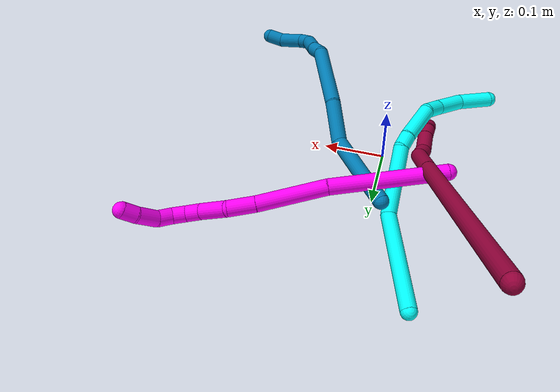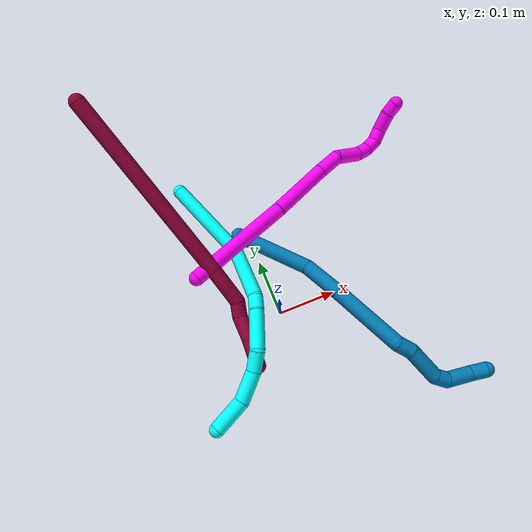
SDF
<sdf version="1.7">
 <world name="default">
  <model name="3">
   <static>0</static>
   <link name="3">
    <collision name="collision-cylinder-e_1_1_4">
     <pose>0.003349 -0.076445 -0.021193 1.84123 0.042188 0.055468</pose>
     <geometry><cylinder><radius>0.0125</radius><length>0.158797</length></cylinder></geometry>
     <surface>
      <friction><ode><mu>1.16</mu><mu2>1.16</mu2><slip1>0</slip1><slip2>0</slip2></ode></friction>
      <contact><ode><kp>1e+06</kp><kd>1</kd><max_vel>0</max_vel><min_depth>0.001</min_depth></ode></contact>
     </surface>
    </collision>
    <visual name="visual-cylinder-e_1_1_4">
     <pose>0.003349 -0.076445 -0.021193 1.84123 0.042188 0.055468</pose>
     <geometry><cylinder><radius>0.0125</radius><length>0.158797</length></cylinder></geometry>
     <material><ambient>0.003922 1 0.996078 1</ambient></material>
    </visual>
    <collision name="collision-cylinder-e_2_4_5">
     <pose>-0.005013 -0.206741 -0.033202 1.4019 -0.211169 -0.1784</pose>
     <geometry><cylinder><radius>0.0125</radius><length>0.11174</length></cylinder></geometry>
     <surface>
      <friction><ode><mu>1.16</mu><mu2>1.16</mu2><slip1>0</slip1><slip2>0</slip2></ode></friction>
      <contact><ode><kp>1e+06</kp><kd>1</kd><max_vel>0</max_vel><min_depth>0.001</min_depth></ode></contact>
     </surface>
    </collision>
    <visual name="visual-cylinder-e_2_4_5">
     <pose>-0.005013 -0.206741 -0.033202 1.4019 -0.211169 -0.1784</pose>
     <geometry><cylinder><radius>0.0125</radius><length>0.11174</length></cylinder></geometry>
     <material><ambient>0.003922 1 0.996078 1</ambient></material>
    </visual>
    <collision name="collision-cylinder-e_3_5_6">
     <pose>-0.023029 -0.271149 -0.023755 1.5457 -0.538305 -0.525575</pose>
     <geometry><cylinder><radius>0.0125</radius><length>0.024597</length></cylinder></geometry>
     <surface>
      <friction><ode><mu>1.16</mu><mu2>1.16</mu2><slip1>0</slip1><slip2>0</slip2></ode></friction>
      <contact><ode><kp>1e+06</kp><kd>1</kd><max_vel>0</max_vel><min_depth>0.001</min_depth></ode></contact>
     </surface>
    </collision>
    <visual name="visual-cylinder-e_3_5_6">
     <pose>-0.023029 -0.271149 -0.023755 1.5457 -0.538305 -0.525575</pose>
     <geometry><cylinder><radius>0.0125</radius><length>0.024597</length></cylinder></geometry>
     <material><ambient>0.003922 1 0.996078 1</ambient></material>
    </visual>
    <collision name="collision-cylinder-e_4_6_7">
     <pose>-0.04858 -0.307726 -0.026375 1.68123 -0.633887 -0.702386</pose>
     <geometry><cylinder><radius>0.0125</radius><length>0.064986</length></cylinder></geometry>
     <surface>
      <friction><ode><mu>1.16</mu><mu2>1.16</mu2><slip1>0</slip1><slip2>0</slip2></ode></friction>
      <contact><ode><kp>1e+06</kp><kd>1</kd><max_vel>0</max_vel><min_depth>0.001</min_depth></ode></contact>
     </surface>
    </collision>
    <visual name="visual-cylinder-e_4_6_7">
     <pose>-0.04858 -0.307726 -0.026375 1.68123 -0.633887 -0.702386</pose>
     <geometry><cylinder><radius>0.0125</radius><length>0.064986</length></cylinder></geometry>
     <material><ambient>0.003922 1 0.996078 1</ambient></material>
    </visual>
    <collision name="collision-cylinder-e_5_7_8">
     <pose>-0.080874 -0.341877 -0.036211 2.27815 -0.884194 -1.59785</pose>
     <geometry><cylinder><radius>0.0125</radius><length>0.033745</length></cylinder></geometry>
     <surface>
      <friction><ode><mu>1.16</mu><mu2>1.16</mu2><slip1>0</slip1><slip2>0</slip2></ode></friction>
      <contact><ode><kp>1e+06</kp><kd>1</kd><max_vel>0</max_vel><min_depth>0.001</min_depth></ode></contact>
     </surface>
    </collision>
    <visual name="visual-cylinder-e_5_7_8">
     <pose>-0.080874 -0.341877 -0.036211 2.27815 -0.884194 -1.59785</pose>
     <geometry><cylinder><radius>0.0125</radius><length>0.033745</length></cylinder></geometry>
     <material><ambient>0.003922 1 0.996078 1</ambient></material>
    </visual>
    <collision name="collision-cylinder-e_6_8_9">
     <pose>-0.116228 -0.36025 -0.04846 2.04821 -1.0936 -1.57104</pose>
     <geometry><cylinder><radius>0.0125</radius><length>0.05022</length></cylinder></geometry>
     <surface>
      <friction><ode><mu>1.16</mu><mu2>1.16</mu2><slip1>0</slip1><slip2>0</slip2></ode></friction>
      <contact><ode><kp>1e+06</kp><kd>1</kd><max_vel>0</max_vel><min_depth>0.001</min_depth></ode></contact>
     </surface>
    </collision>
    <visual name="visual-cylinder-e_6_8_9">
     <pose>-0.116228 -0.36025 -0.04846 2.04821 -1.0936 -1.57104</pose>
     <geometry><cylinder><radius>0.0125</radius><length>0.05022</length></cylinder></geometry>
     <material><ambient>0.003922 1 0.996078 1</ambient></material>
    </visual>
    <collision name="collision-cylinder-e_7_9_2">
     <pose>-0.166129 -0.374867 -0.052807 1.35632 -1.41001 -1.20184</pose>
     <geometry><cylinder><radius>0.0125</radius><length>0.055914</length></cylinder></geometry>
     <surface>
      <friction><ode><mu>1.16</mu><mu2>1.16</mu2><slip1>0</slip1><slip2>0</slip2></ode></friction>
      <contact><ode><kp>1e+06</kp><kd>1</kd><max_vel>0</max_vel><min_depth>0.001</min_depth></ode></contact>
     </surface>
    </collision>
    <visual name="visual-cylinder-e_7_9_2">
     <pose>-0.166129 -0.374867 -0.052807 1.35632 -1.41001 -1.20184</pose>
     <geometry><cylinder><radius>0.0125</radius><length>0.055914</length></cylinder></geometry>
     <material><ambient>0.003922 1 0.996078 1</ambient></material>
    </visual>
    <collision name="collision-sphere-2">
     <pose>-0.193726 -0.37924 -0.051854 0 -0 0</pose>
     <geometry><sphere><radius>0.0125</radius></sphere></geometry>
     <surface>
      <friction><ode><mu>1.16</mu><mu2>1.16</mu2><slip1>0</slip1><slip2>0</slip2></ode></friction>
      <contact><ode><kp>1e+06</kp><kd>1</kd><max_vel>0</max_vel><min_depth>0.001</min_depth></ode></contact>
     </surface>
    </collision>
    <visual name="visual-sphere-2">
     <pose>-0.193726 -0.37924 -0.051854 0 -0 0</pose>
     <geometry><sphere><radius>0.0125</radius></sphere></geometry>
     <material><ambient>0.003922 1 0.996078 1</ambient></material>
    </visual>
    <collision name="collision-sphere-9">
     <pose>-0.138533 -0.370493 -0.053759 0 -0 0</pose>
     <geometry><sphere><radius>0.0125</radius></sphere></geometry>
     <surface>
      <friction><ode><mu>1.16</mu><mu2>1.16</mu2><slip1>0</slip1><slip2>0</slip2></ode></friction>
      <contact><ode><kp>1e+06</kp><kd>1</kd><max_vel>0</max_vel><min_depth>0.001</min_depth></ode></contact>
     </surface>
    </collision>
    <visual name="visual-sphere-9">
     <pose>-0.138533 -0.370493 -0.053759 0 -0 0</pose>
     <geometry><sphere><radius>0.0125</radius></sphere></geometry>
     <material><ambient>0.003922 1 0.996078 1</ambient></material>
    </visual>
    <collision name="collision-sphere-4">
     <pose>0.006697 -0.152889 -0.042385 0 -0 0</pose>
     <geometry><sphere><radius>0.0125</radius></sphere></geometry>
     <surface>
      <friction><ode><mu>1.16</mu><mu2>1.16</mu2><slip1>0</slip1><slip2>0</slip2></ode></friction>
      <contact><ode><kp>1e+06</kp><kd>1</kd><max_vel>0</max_vel><min_depth>0.001</min_depth></ode></contact>
     </surface>
    </collision>
    <visual name="visual-sphere-4">
     <pose>0.006697 -0.152889 -0.042385 0 -0 0</pose>
     <geometry><sphere><radius>0.0125</radius></sphere></geometry>
     <material><ambient>0.003922 1 0.996078 1</ambient></material>
    </visual>
    <collision name="collision-sphere-1">
     <geometry><sphere><radius>0.0125</radius></sphere></geometry>
     <surface>
      <friction><ode><mu>1.16</mu><mu2>1.16</mu2><slip1>0</slip1><slip2>0</slip2></ode></friction>
      <contact><ode><kp>1e+06</kp><kd>1</kd><max_vel>0</max_vel><min_depth>0.001</min_depth></ode></contact>
     </surface>
    </collision>
    <visual name="visual-sphere-1">
     <geometry><sphere><radius>0.0125</radius></sphere></geometry>
     <material><ambient>0.003922 1 0.996078 1</ambient></material>
    </visual>
    <collision name="collision-sphere-8">
     <pose>-0.093923 -0.350007 -0.043161 0 -0 0</pose>
     <geometry><sphere><radius>0.0125</radius></sphere></geometry>
     <surface>
      <friction><ode><mu>1.16</mu><mu2>1.16</mu2><slip1>0</slip1><slip2>0</slip2></ode></friction>
      <contact><ode><kp>1e+06</kp><kd>1</kd><max_vel>0</max_vel><min_depth>0.001</min_depth></ode></contact>
     </surface>
    </collision>
    <visual name="visual-sphere-8">
     <pose>-0.093923 -0.350007 -0.043161 0 -0 0</pose>
     <geometry><sphere><radius>0.0125</radius></sphere></geometry>
     <material><ambient>0.003922 1 0.996078 1</ambient></material>
    </visual>
    <collision name="collision-sphere-5">
     <pose>-0.016724 -0.260593 -0.02402 0 -0 0</pose>
     <geometry><sphere><radius>0.0125</radius></sphere></geometry>
     <surface>
      <friction><ode><mu>1.16</mu><mu2>1.16</mu2><slip1>0</slip1><slip2>0</slip2></ode></friction>
      <contact><ode><kp>1e+06</kp><kd>1</kd><max_vel>0</max_vel><min_depth>0.001</min_depth></ode></contact>
     </surface>
    </collision>
    <visual name="visual-sphere-5">
     <pose>-0.016724 -0.260593 -0.02402 0 -0 0</pose>
     <geometry><sphere><radius>0.0125</radius></sphere></geometry>
     <material><ambient>0.003922 1 0.996078 1</ambient></material>
    </visual>
    <collision name="collision-sphere-6">
     <pose>-0.029334 -0.281705 -0.02349 0 -0 0</pose>
     <geometry><sphere><radius>0.0125</radius></sphere></geometry>
     <surface>
      <friction><ode><mu>1.16</mu><mu2>1.16</mu2><slip1>0</slip1><slip2>0</slip2></ode></friction>
      <contact><ode><kp>1e+06</kp><kd>1</kd><max_vel>0</max_vel><min_depth>0.001</min_depth></ode></contact>
     </surface>
    </collision>
    <visual name="visual-sphere-6">
     <pose>-0.029334 -0.281705 -0.02349 0 -0 0</pose>
     <geometry><sphere><radius>0.0125</radius></sphere></geometry>
     <material><ambient>0.003922 1 0.996078 1</ambient></material>
    </visual>
    <collision name="collision-sphere-7">
     <pose>-0.067825 -0.333748 -0.029261 0 -0 0</pose>
     <geometry><sphere><radius>0.0125</radius></sphere></geometry>
     <surface>
      <friction><ode><mu>1.16</mu><mu2>1.16</mu2><slip1>0</slip1><slip2>0</slip2></ode></friction>
      <contact><ode><kp>1e+06</kp><kd>1</kd><max_vel>0</max_vel><min_depth>0.001</min_depth></ode></contact>
     </surface>
    </collision>
    <visual name="visual-sphere-7">
     <pose>-0.067825 -0.333748 -0.029261 0 -0 0</pose>
     <geometry><sphere><radius>0.0125</radius></sphere></geometry>
     <material><ambient>0.003922 1 0.996078 1</ambient></material>
    </visual>
    <inertial>
     <pose>-0.043214 -0.224994 -0.031964 0 -0 0</pose>
     <mass>0.5</mass>
     <inertia>
      <ixx>0.000431</ixx>
      <ixy>0</ixy>
      <ixz>0</ixz>
      <iyy>-8.5e-05</iyy>
      <iyz>0</iyz>
      <izz>0.00053</izz>
     </inertia>
    </inertial>
   </link>
   <pose>-0.085778 0.280431 0.011487 -0.298098 -0.159743 0.310502</pose>
  </model>
  <model name="8">
   <static>0</static>
   <link name="8">
    <collision name="collision-cylinder-e_1_1_4">
     <pose>0.028433 -0.016784 -0.156959 3.03506 0.178214 2.06555</pose>
     <geometry><cylinder><radius>0.0125</radius><length>0.320788</length></cylinder></geometry>
     <surface>
      <friction><ode><mu>1.16</mu><mu2>1.16</mu2><slip1>0</slip1><slip2>0</slip2></ode></friction>
      <contact><ode><kp>1e+06</kp><kd>1</kd><max_vel>0</max_vel><min_depth>0.001</min_depth></ode></contact>
     </surface>
    </collision>
    <visual name="visual-cylinder-e_1_1_4">
     <pose>0.028433 -0.016784 -0.156959 3.03506 0.178214 2.06555</pose>
     <geometry><cylinder><radius>0.0125</radius><length>0.320788</length></cylinder></geometry>
     <material><ambient>0.584314 0 0.227451 1</ambient></material>
    </visual>
    <collision name="collision-cylinder-e_2_4_5">
     <pose>0.062378 -0.036057 -0.346054 3.06433 0.169327 2.28682</pose>
     <geometry><cylinder><radius>0.0125</radius><length>0.0654</length></cylinder></geometry>
     <surface>
      <friction><ode><mu>1.16</mu><mu2>1.16</mu2><slip1>0</slip1><slip2>0</slip2></ode></friction>
      <contact><ode><kp>1e+06</kp><kd>1</kd><max_vel>0</max_vel><min_depth>0.001</min_depth></ode></contact>
     </surface>
    </collision>
    <visual name="visual-cylinder-e_2_4_5">
     <pose>0.062378 -0.036057 -0.346054 3.06433 0.169327 2.28682</pose>
     <geometry><cylinder><radius>0.0125</radius><length>0.0654</length></cylinder></geometry>
     <material><ambient>0.584314 0 0.227451 1</ambient></material>
    </visual>
    <collision name="collision-cylinder-e_3_5_6">
     <pose>0.065017 -0.036041 -0.390026 -2.93314 -0.233028 1.68292</pose>
     <geometry><cylinder><radius>0.0125</radius><length>0.024868</length></cylinder></geometry>
     <surface>
      <friction><ode><mu>1.16</mu><mu2>1.16</mu2><slip1>0</slip1><slip2>0</slip2></ode></friction>
      <contact><ode><kp>1e+06</kp><kd>1</kd><max_vel>0</max_vel><min_depth>0.001</min_depth></ode></contact>
     </surface>
    </collision>
    <visual name="visual-cylinder-e_3_5_6">
     <pose>0.065017 -0.036041 -0.390026 -2.93314 -0.233028 1.68292</pose>
     <geometry><cylinder><radius>0.0125</radius><length>0.024868</length></cylinder></geometry>
     <material><ambient>0.584314 0 0.227451 1</ambient></material>
    </visual>
    <collision name="collision-cylinder-e_4_6_7">
     <pose>0.056871 -0.036862 -0.421034 2.96989 -0.264713 -1.99388</pose>
     <geometry><cylinder><radius>0.0125</radius><length>0.040322</length></cylinder></geometry>
     <surface>
      <friction><ode><mu>1.16</mu><mu2>1.16</mu2><slip1>0</slip1><slip2>0</slip2></ode></friction>
      <contact><ode><kp>1e+06</kp><kd>1</kd><max_vel>0</max_vel><min_depth>0.001</min_depth></ode></contact>
     </surface>
    </collision>
    <visual name="visual-cylinder-e_4_6_7">
     <pose>0.056871 -0.036862 -0.421034 2.96989 -0.264713 -1.99388</pose>
     <geometry><cylinder><radius>0.0125</radius><length>0.040322</length></cylinder></geometry>
     <material><ambient>0.584314 0 0.227451 1</ambient></material>
    </visual>
    <collision name="collision-cylinder-e_5_7_8">
     <pose>0.048176 -0.041122 -0.451505 3.059 -0.293 -2.59555</pose>
     <geometry><cylinder><radius>0.0125</radius><length>0.023683</length></cylinder></geometry>
     <surface>
      <friction><ode><mu>1.16</mu><mu2>1.16</mu2><slip1>0</slip1><slip2>0</slip2></ode></friction>
      <contact><ode><kp>1e+06</kp><kd>1</kd><max_vel>0</max_vel><min_depth>0.001</min_depth></ode></contact>
     </surface>
    </collision>
    <visual name="visual-cylinder-e_5_7_8">
     <pose>0.048176 -0.041122 -0.451505 3.059 -0.293 -2.59555</pose>
     <geometry><cylinder><radius>0.0125</radius><length>0.023683</length></cylinder></geometry>
     <material><ambient>0.584314 0 0.227451 1</ambient></material>
    </visual>
    <collision name="collision-cylinder-e_6_8_2">
     <pose>0.044165 -0.040344 -0.475141 -3.0036 -0.047366 0.660418</pose>
     <geometry><cylinder><radius>0.0125</radius><length>0.024939</length></cylinder></geometry>
     <surface>
      <friction><ode><mu>1.16</mu><mu2>1.16</mu2><slip1>0</slip1><slip2>0</slip2></ode></friction>
      <contact><ode><kp>1e+06</kp><kd>1</kd><max_vel>0</max_vel><min_depth>0.001</min_depth></ode></contact>
     </surface>
    </collision>
    <visual name="visual-cylinder-e_6_8_2">
     <pose>0.044165 -0.040344 -0.475141 -3.0036 -0.047366 0.660418</pose>
     <geometry><cylinder><radius>0.0125</radius><length>0.024939</length></cylinder></geometry>
     <material><ambient>0.584314 0 0.227451 1</ambient></material>
    </visual>
    <collision name="collision-sphere-2">
     <pose>0.043575 -0.038631 -0.487478 0 -0 0</pose>
     <geometry><sphere><radius>0.0125</radius></sphere></geometry>
     <surface>
      <friction><ode><mu>1.16</mu><mu2>1.16</mu2><slip1>0</slip1><slip2>0</slip2></ode></friction>
      <contact><ode><kp>1e+06</kp><kd>1</kd><max_vel>0</max_vel><min_depth>0.001</min_depth></ode></contact>
     </surface>
    </collision>
    <visual name="visual-sphere-2">
     <pose>0.043575 -0.038631 -0.487478 0 -0 0</pose>
     <geometry><sphere><radius>0.0125</radius></sphere></geometry>
     <material><ambient>0.584314 0 0.227451 1</ambient></material>
    </visual>
    <collision name="collision-sphere-4">
     <pose>0.056867 -0.033569 -0.313918 0 -0 0</pose>
     <geometry><sphere><radius>0.0125</radius></sphere></geometry>
     <surface>
      <friction><ode><mu>1.16</mu><mu2>1.16</mu2><slip1>0</slip1><slip2>0</slip2></ode></friction>
      <contact><ode><kp>1e+06</kp><kd>1</kd><max_vel>0</max_vel><min_depth>0.001</min_depth></ode></contact>
     </surface>
    </collision>
    <visual name="visual-sphere-4">
     <pose>0.056867 -0.033569 -0.313918 0 -0 0</pose>
     <geometry><sphere><radius>0.0125</radius></sphere></geometry>
     <material><ambient>0.584314 0 0.227451 1</ambient></material>
    </visual>
    <collision name="collision-sphere-1">
     <geometry><sphere><radius>0.0125</radius></sphere></geometry>
     <surface>
      <friction><ode><mu>1.16</mu><mu2>1.16</mu2><slip1>0</slip1><slip2>0</slip2></ode></friction>
      <contact><ode><kp>1e+06</kp><kd>1</kd><max_vel>0</max_vel><min_depth>0.001</min_depth></ode></contact>
     </surface>
    </collision>
    <visual name="visual-sphere-1">
     <geometry><sphere><radius>0.0125</radius></sphere></geometry>
     <material><ambient>0.584314 0 0.227451 1</ambient></material>
    </visual>
    <collision name="collision-sphere-8">
     <pose>0.044756 -0.042057 -0.462804 0 -0 0</pose>
     <geometry><sphere><radius>0.0125</radius></sphere></geometry>
     <surface>
      <friction><ode><mu>1.16</mu><mu2>1.16</mu2><slip1>0</slip1><slip2>0</slip2></ode></friction>
      <contact><ode><kp>1e+06</kp><kd>1</kd><max_vel>0</max_vel><min_depth>0.001</min_depth></ode></contact>
     </surface>
    </collision>
    <visual name="visual-sphere-8">
     <pose>0.044756 -0.042057 -0.462804 0 -0 0</pose>
     <geometry><sphere><radius>0.0125</radius></sphere></geometry>
     <material><ambient>0.584314 0 0.227451 1</ambient></material>
    </visual>
    <collision name="collision-sphere-5">
     <pose>0.067888 -0.038545 -0.37819 0 -0 0</pose>
     <geometry><sphere><radius>0.0125</radius></sphere></geometry>
     <surface>
      <friction><ode><mu>1.16</mu><mu2>1.16</mu2><slip1>0</slip1><slip2>0</slip2></ode></friction>
      <contact><ode><kp>1e+06</kp><kd>1</kd><max_vel>0</max_vel><min_depth>0.001</min_depth></ode></contact>
     </surface>
    </collision>
    <visual name="visual-sphere-5">
     <pose>0.067888 -0.038545 -0.37819 0 -0 0</pose>
     <geometry><sphere><radius>0.0125</radius></sphere></geometry>
     <material><ambient>0.584314 0 0.227451 1</ambient></material>
    </visual>
    <collision name="collision-sphere-6">
     <pose>0.062146 -0.033537 -0.401862 0 -0 0</pose>
     <geometry><sphere><radius>0.0125</radius></sphere></geometry>
     <surface>
      <friction><ode><mu>1.16</mu><mu2>1.16</mu2><slip1>0</slip1><slip2>0</slip2></ode></friction>
      <contact><ode><kp>1e+06</kp><kd>1</kd><max_vel>0</max_vel><min_depth>0.001</min_depth></ode></contact>
     </surface>
    </collision>
    <visual name="visual-sphere-6">
     <pose>0.062146 -0.033537 -0.401862 0 -0 0</pose>
     <geometry><sphere><radius>0.0125</radius></sphere></geometry>
     <material><ambient>0.584314 0 0.227451 1</ambient></material>
    </visual>
    <collision name="collision-sphere-7">
     <pose>0.051596 -0.040187 -0.440207 0 -0 0</pose>
     <geometry><sphere><radius>0.0125</radius></sphere></geometry>
     <surface>
      <friction><ode><mu>1.16</mu><mu2>1.16</mu2><slip1>0</slip1><slip2>0</slip2></ode></friction>
      <contact><ode><kp>1e+06</kp><kd>1</kd><max_vel>0</max_vel><min_depth>0.001</min_depth></ode></contact>
     </surface>
    </collision>
    <visual name="visual-sphere-7">
     <pose>0.051596 -0.040187 -0.440207 0 -0 0</pose>
     <geometry><sphere><radius>0.0125</radius></sphere></geometry>
     <material><ambient>0.584314 0 0.227451 1</ambient></material>
    </visual>
    <inertial>
     <pose>0.038706 -0.02421 -0.244402 0 -0 0</pose>
     <mass>0.5</mass>
     <inertia>
      <ixx>0.001102</ixx>
      <ixy>0</ixy>
      <ixz>0</ixz>
      <iyy>0.003777</iyy>
      <iyz>0</iyz>
      <izz>-0.000238</izz>
     </inertia>
    </inertial>
   </link>
   <pose>-0.171489 0.350261 0.247213 -0.948539 0.640738 0.51151</pose>
  </model>
  <model name="9">
   <static>0</static>
   <link name="9">
    <collision name="collision-cylinder-e_1_1_4">
     <pose>-0.00764 -0.04815 0.042811 0.844023 -0.118021 -0.053039</pose>
     <geometry><cylinder><radius>0.0125</radius><length>0.129763</length></cylinder></geometry>
     <surface>
      <friction><ode><mu>1.16</mu><mu2>1.16</mu2><slip1>0</slip1><slip2>0</slip2></ode></friction>
      <contact><ode><kp>1e+06</kp><kd>1</kd><max_vel>0</max_vel><min_depth>0.001</min_depth></ode></contact>
     </surface>
    </collision>
    <visual name="visual-cylinder-e_1_1_4">
     <pose>-0.00764 -0.04815 0.042811 0.844023 -0.118021 -0.053039</pose>
     <geometry><cylinder><radius>0.0125</radius><length>0.129763</length></cylinder></geometry>
     <material><ambient>0 0.490196 0.709804 1</ambient></material>
    </visual>
    <collision name="collision-cylinder-e_2_4_5">
     <pose>-0.023974 -0.129771 0.096084 1.26788 -0.24305 -0.179086</pose>
     <geometry><cylinder><radius>0.0125</radius><length>0.07226</length></cylinder></geometry>
     <surface>
      <friction><ode><mu>1.16</mu><mu2>1.16</mu2><slip1>0</slip1><slip2>0</slip2></ode></friction>
      <contact><ode><kp>1e+06</kp><kd>1</kd><max_vel>0</max_vel><min_depth>0.001</min_depth></ode></contact>
     </surface>
    </collision>
    <visual name="visual-cylinder-e_2_4_5">
     <pose>-0.023974 -0.129771 0.096084 1.26788 -0.24305 -0.179086</pose>
     <geometry><cylinder><radius>0.0125</radius><length>0.07226</length></cylinder></geometry>
     <material><ambient>0 0.490196 0.709804 1</ambient></material>
    </visual>
    <collision name="collision-cylinder-e_3_5_6">
     <pose>-0.03527 -0.218018 0.131484 1.14354 -0.043187 -0.027792</pose>
     <geometry><cylinder><radius>0.0125</radius><length>0.120483</length></cylinder></geometry>
     <surface>
      <friction><ode><mu>1.16</mu><mu2>1.16</mu2><slip1>0</slip1><slip2>0</slip2></ode></friction>
      <contact><ode><kp>1e+06</kp><kd>1</kd><max_vel>0</max_vel><min_depth>0.001</min_depth></ode></contact>
     </surface>
    </collision>
    <visual name="visual-cylinder-e_3_5_6">
     <pose>-0.03527 -0.218018 0.131484 1.14354 -0.043187 -0.027792</pose>
     <geometry><cylinder><radius>0.0125</radius><length>0.120483</length></cylinder></geometry>
     <material><ambient>0 0.490196 0.709804 1</ambient></material>
    </visual>
    <collision name="collision-cylinder-e_4_6_7">
     <pose>-0.035278 -0.281153 0.166756 0.680266 0.192668 0.068368</pose>
     <geometry><cylinder><radius>0.0125</radius><length>0.027084</length></cylinder></geometry>
     <surface>
      <friction><ode><mu>1.16</mu><mu2>1.16</mu2><slip1>0</slip1><slip2>0</slip2></ode></friction>
      <contact><ode><kp>1e+06</kp><kd>1</kd><max_vel>0</max_vel><min_depth>0.001</min_depth></ode></contact>
     </surface>
    </collision>
    <visual name="visual-cylinder-e_4_6_7">
     <pose>-0.035278 -0.281153 0.166756 0.680266 0.192668 0.068368</pose>
     <geometry><cylinder><radius>0.0125</radius><length>0.027084</length></cylinder></geometry>
     <material><ambient>0 0.490196 0.709804 1</ambient></material>
    </visual>
    <collision name="collision-cylinder-e_5_7_8">
     <pose>-0.021215 -0.309749 0.193321 0.894751 0.416328 0.20201</pose>
     <geometry><cylinder><radius>0.0125</radius><length>0.056727</length></cylinder></geometry>
     <surface>
      <friction><ode><mu>1.16</mu><mu2>1.16</mu2><slip1>0</slip1><slip2>0</slip2></ode></friction>
      <contact><ode><kp>1e+06</kp><kd>1</kd><max_vel>0</max_vel><min_depth>0.001</min_depth></ode></contact>
     </surface>
    </collision>
    <visual name="visual-cylinder-e_5_7_8">
     <pose>-0.021215 -0.309749 0.193321 0.894751 0.416328 0.20201</pose>
     <geometry><cylinder><radius>0.0125</radius><length>0.056727</length></cylinder></geometry>
     <material><ambient>0 0.490196 0.709804 1</ambient></material>
    </visual>
    <collision name="collision-cylinder-e_6_8_9">
     <pose>-0.007586 -0.335185 0.219871 0.466841 0.184663 0.044022</pose>
     <geometry><cylinder><radius>0.0125</radius><length>0.02351</length></cylinder></geometry>
     <surface>
      <friction><ode><mu>1.16</mu><mu2>1.16</mu2><slip1>0</slip1><slip2>0</slip2></ode></friction>
      <contact><ode><kp>1e+06</kp><kd>1</kd><max_vel>0</max_vel><min_depth>0.001</min_depth></ode></contact>
     </surface>
    </collision>
    <visual name="visual-cylinder-e_6_8_9">
     <pose>-0.007586 -0.335185 0.219871 0.466841 0.184663 0.044022</pose>
     <geometry><cylinder><radius>0.0125</radius><length>0.02351</length></cylinder></geometry>
     <material><ambient>0 0.490196 0.709804 1</ambient></material>
    </visual>
    <collision name="collision-cylinder-e_7_9_10">
     <pose>-0.008183 -0.341966 0.251565 0.073836 -0.127823 -0.004728</pose>
     <geometry><cylinder><radius>0.0125</radius><length>0.043222</length></cylinder></geometry>
     <surface>
      <friction><ode><mu>1.16</mu><mu2>1.16</mu2><slip1>0</slip1><slip2>0</slip2></ode></friction>
      <contact><ode><kp>1e+06</kp><kd>1</kd><max_vel>0</max_vel><min_depth>0.001</min_depth></ode></contact>
     </surface>
    </collision>
    <visual name="visual-cylinder-e_7_9_10">
     <pose>-0.008183 -0.341966 0.251565 0.073836 -0.127823 -0.004728</pose>
     <geometry><cylinder><radius>0.0125</radius><length>0.043222</length></cylinder></geometry>
     <material><ambient>0 0.490196 0.709804 1</ambient></material>
    </visual>
    <collision name="collision-cylinder-e_8_10_2">
     <pose>-0.016179 -0.345889 0.285133 0.189736 -0.399516 -0.038524</pose>
     <geometry><cylinder><radius>0.0125</radius><length>0.026951</length></cylinder></geometry>
     <surface>
      <friction><ode><mu>1.16</mu><mu2>1.16</mu2><slip1>0</slip1><slip2>0</slip2></ode></friction>
      <contact><ode><kp>1e+06</kp><kd>1</kd><max_vel>0</max_vel><min_depth>0.001</min_depth></ode></contact>
     </surface>
    </collision>
    <visual name="visual-cylinder-e_8_10_2">
     <pose>-0.016179 -0.345889 0.285133 0.189736 -0.399516 -0.038524</pose>
     <geometry><cylinder><radius>0.0125</radius><length>0.026951</length></cylinder></geometry>
     <material><ambient>0 0.490196 0.709804 1</ambient></material>
    </visual>
    <collision name="collision-sphere-2">
     <pose>-0.021421 -0.34823 0.297325 0 -0 0</pose>
     <geometry><sphere><radius>0.0125</radius></sphere></geometry>
     <surface>
      <friction><ode><mu>1.16</mu><mu2>1.16</mu2><slip1>0</slip1><slip2>0</slip2></ode></friction>
      <contact><ode><kp>1e+06</kp><kd>1</kd><max_vel>0</max_vel><min_depth>0.001</min_depth></ode></contact>
     </surface>
    </collision>
    <visual name="visual-sphere-2">
     <pose>-0.021421 -0.34823 0.297325 0 -0 0</pose>
     <geometry><sphere><radius>0.0125</radius></sphere></geometry>
     <material><ambient>0 0.490196 0.709804 1</ambient></material>
    </visual>
    <collision name="collision-sphere-10">
     <pose>-0.010937 -0.343548 0.272942 0 -0 0</pose>
     <geometry><sphere><radius>0.0125</radius></sphere></geometry>
     <surface>
      <friction><ode><mu>1.16</mu><mu2>1.16</mu2><slip1>0</slip1><slip2>0</slip2></ode></friction>
      <contact><ode><kp>1e+06</kp><kd>1</kd><max_vel>0</max_vel><min_depth>0.001</min_depth></ode></contact>
     </surface>
    </collision>
    <visual name="visual-sphere-10">
     <pose>-0.010937 -0.343548 0.272942 0 -0 0</pose>
     <geometry><sphere><radius>0.0125</radius></sphere></geometry>
     <material><ambient>0 0.490196 0.709804 1</ambient></material>
    </visual>
    <collision name="collision-sphere-9">
     <pose>-0.005428 -0.340385 0.230189 0 -0 0</pose>
     <geometry><sphere><radius>0.0125</radius></sphere></geometry>
     <surface>
      <friction><ode><mu>1.16</mu><mu2>1.16</mu2><slip1>0</slip1><slip2>0</slip2></ode></friction>
      <contact><ode><kp>1e+06</kp><kd>1</kd><max_vel>0</max_vel><min_depth>0.001</min_depth></ode></contact>
     </surface>
    </collision>
    <visual name="visual-sphere-9">
     <pose>-0.005428 -0.340385 0.230189 0 -0 0</pose>
     <geometry><sphere><radius>0.0125</radius></sphere></geometry>
     <material><ambient>0 0.490196 0.709804 1</ambient></material>
    </visual>
    <collision name="collision-sphere-4">
     <pose>-0.015279 -0.0963 0.085623 0 -0 0</pose>
     <geometry><sphere><radius>0.0125</radius></sphere></geometry>
     <surface>
      <friction><ode><mu>1.16</mu><mu2>1.16</mu2><slip1>0</slip1><slip2>0</slip2></ode></friction>
      <contact><ode><kp>1e+06</kp><kd>1</kd><max_vel>0</max_vel><min_depth>0.001</min_depth></ode></contact>
     </surface>
    </collision>
    <visual name="visual-sphere-4">
     <pose>-0.015279 -0.0963 0.085623 0 -0 0</pose>
     <geometry><sphere><radius>0.0125</radius></sphere></geometry>
     <material><ambient>0 0.490196 0.709804 1</ambient></material>
    </visual>
    <collision name="collision-sphere-1">
     <geometry><sphere><radius>0.0125</radius></sphere></geometry>
     <surface>
      <friction><ode><mu>1.16</mu><mu2>1.16</mu2><slip1>0</slip1><slip2>0</slip2></ode></friction>
      <contact><ode><kp>1e+06</kp><kd>1</kd><max_vel>0</max_vel><min_depth>0.001</min_depth></ode></contact>
     </surface>
    </collision>
    <visual name="visual-sphere-1">
     <geometry><sphere><radius>0.0125</radius></sphere></geometry>
     <material><ambient>0 0.490196 0.709804 1</ambient></material>
    </visual>
    <collision name="collision-sphere-8">
     <pose>-0.009744 -0.329984 0.209552 0 -0 0</pose>
     <geometry><sphere><radius>0.0125</radius></sphere></geometry>
     <surface>
      <friction><ode><mu>1.16</mu><mu2>1.16</mu2><slip1>0</slip1><slip2>0</slip2></ode></friction>
      <contact><ode><kp>1e+06</kp><kd>1</kd><max_vel>0</max_vel><min_depth>0.001</min_depth></ode></contact>
     </surface>
    </collision>
    <visual name="visual-sphere-8">
     <pose>-0.009744 -0.329984 0.209552 0 -0 0</pose>
     <geometry><sphere><radius>0.0125</radius></sphere></geometry>
     <material><ambient>0 0.490196 0.709804 1</ambient></material>
    </visual>
    <collision name="collision-sphere-5">
     <pose>-0.032669 -0.163243 0.106545 0 -0 0</pose>
     <geometry><sphere><radius>0.0125</radius></sphere></geometry>
     <surface>
      <friction><ode><mu>1.16</mu><mu2>1.16</mu2><slip1>0</slip1><slip2>0</slip2></ode></friction>
      <contact><ode><kp>1e+06</kp><kd>1</kd><max_vel>0</max_vel><min_depth>0.001</min_depth></ode></contact>
     </surface>
    </collision>
    <visual name="visual-sphere-5">
     <pose>-0.032669 -0.163243 0.106545 0 -0 0</pose>
     <geometry><sphere><radius>0.0125</radius></sphere></geometry>
     <material><ambient>0 0.490196 0.709804 1</ambient></material>
    </visual>
    <collision name="collision-sphere-6">
     <pose>-0.037871 -0.272793 0.156424 0 -0 0</pose>
     <geometry><sphere><radius>0.0125</radius></sphere></geometry>
     <surface>
      <friction><ode><mu>1.16</mu><mu2>1.16</mu2><slip1>0</slip1><slip2>0</slip2></ode></friction>
      <contact><ode><kp>1e+06</kp><kd>1</kd><max_vel>0</max_vel><min_depth>0.001</min_depth></ode></contact>
     </surface>
    </collision>
    <visual name="visual-sphere-6">
     <pose>-0.037871 -0.272793 0.156424 0 -0 0</pose>
     <geometry><sphere><radius>0.0125</radius></sphere></geometry>
     <material><ambient>0 0.490196 0.709804 1</ambient></material>
    </visual>
    <collision name="collision-sphere-7">
     <pose>-0.032685 -0.289514 0.177089 0 -0 0</pose>
     <geometry><sphere><radius>0.0125</radius></sphere></geometry>
     <surface>
      <friction><ode><mu>1.16</mu><mu2>1.16</mu2><slip1>0</slip1><slip2>0</slip2></ode></friction>
      <contact><ode><kp>1e+06</kp><kd>1</kd><max_vel>0</max_vel><min_depth>0.001</min_depth></ode></contact>
     </surface>
    </collision>
    <visual name="visual-sphere-7">
     <pose>-0.032685 -0.289514 0.177089 0 -0 0</pose>
     <geometry><sphere><radius>0.0125</radius></sphere></geometry>
     <material><ambient>0 0.490196 0.709804 1</ambient></material>
    </visual>
    <inertial>
     <pose>-0.0202 -0.198123 0.1351 0 -0 0</pose>
     <mass>0.5</mass>
     <inertia>
      <ixx>0.000381</ixx>
      <ixy>0</ixy>
      <ixz>0</ixz>
      <iyy>0.000182</iyy>
      <iyz>0</iyz>
      <izz>0.000378</izz>
     </inertia>
    </inertial>
   </link>
   <pose>-0.018439 0.140208 0.058871 -2.61074 1.14488 -2.65141</pose>
  </model>
  <model name="10">
   <static>0</static>
   <link name="10">
    <collision name="collision-cylinder-e_1_1_4">
     <pose>0.076717 0.025038 0.039726 -0.562378 1.02153 -0.32093</pose>
     <geometry><cylinder><radius>0.0125</radius><length>0.179895</length></cylinder></geometry>
     <surface>
      <friction><ode><mu>1.16</mu><mu2>1.16</mu2><slip1>0</slip1><slip2>0</slip2></ode></friction>
      <contact><ode><kp>1e+06</kp><kd>1</kd><max_vel>0</max_vel><min_depth>0.001</min_depth></ode></contact>
     </surface>
    </collision>
    <visual name="visual-cylinder-e_1_1_4">
     <pose>0.076717 0.025038 0.039726 -0.562378 1.02153 -0.32093</pose>
     <geometry><cylinder><radius>0.0125</radius><length>0.179895</length></cylinder></geometry>
     <material><ambient>1 0 0.964706 1</ambient></material>
    </visual>
    <collision name="collision-cylinder-e_2_4_5">
     <pose>0.198472 0.060113 0.106622 -0.353857 0.999285 -0.194573</pose>
     <geometry><cylinder><radius>0.0125</radius><length>0.107097</length></cylinder></geometry>
     <surface>
      <friction><ode><mu>1.16</mu><mu2>1.16</mu2><slip1>0</slip1><slip2>0</slip2></ode></friction>
      <contact><ode><kp>1e+06</kp><kd>1</kd><max_vel>0</max_vel><min_depth>0.001</min_depth></ode></contact>
     </surface>
    </collision>
    <visual name="visual-cylinder-e_2_4_5">
     <pose>0.198472 0.060113 0.106622 -0.353857 0.999285 -0.194573</pose>
     <geometry><cylinder><radius>0.0125</radius><length>0.107097</length></cylinder></geometry>
     <material><ambient>1 0 0.964706 1</ambient></material>
    </visual>
    <collision name="collision-cylinder-e_3_5_6">
     <pose>0.261305 0.075463 0.14386 -0.485586 1.00164 -0.269498</pose>
     <geometry><cylinder><radius>0.0125</radius><length>0.042249</length></cylinder></geometry>
     <surface>
      <friction><ode><mu>1.16</mu><mu2>1.16</mu2><slip1>0</slip1><slip2>0</slip2></ode></friction>
      <contact><ode><kp>1e+06</kp><kd>1</kd><max_vel>0</max_vel><min_depth>0.001</min_depth></ode></contact>
     </surface>
    </collision>
    <visual name="visual-cylinder-e_3_5_6">
     <pose>0.261305 0.075463 0.14386 -0.485586 1.00164 -0.269498</pose>
     <geometry><cylinder><radius>0.0125</radius><length>0.042249</length></cylinder></geometry>
     <material><ambient>1 0 0.964706 1</ambient></material>
    </visual>
    <collision name="collision-cylinder-e_4_6_7">
     <pose>0.290541 0.091168 0.171531 -0.533317 0.510285 -0.142257</pose>
     <geometry><cylinder><radius>0.0125</radius><length>0.046852</length></cylinder></geometry>
     <surface>
      <friction><ode><mu>1.16</mu><mu2>1.16</mu2><slip1>0</slip1><slip2>0</slip2></ode></friction>
      <contact><ode><kp>1e+06</kp><kd>1</kd><max_vel>0</max_vel><min_depth>0.001</min_depth></ode></contact>
     </surface>
    </collision>
    <visual name="visual-cylinder-e_4_6_7">
     <pose>0.290541 0.091168 0.171531 -0.533317 0.510285 -0.142257</pose>
     <geometry><cylinder><radius>0.0125</radius><length>0.046852</length></cylinder></geometry>
     <material><ambient>1 0 0.964706 1</ambient></material>
    </visual>
    <collision name="collision-cylinder-e_5_7_8">
     <pose>0.310377 0.105558 0.196442 -0.50052 0.789308 -0.212134</pose>
     <geometry><cylinder><radius>0.0125</radius><length>0.023652</length></cylinder></geometry>
     <surface>
      <friction><ode><mu>1.16</mu><mu2>1.16</mu2><slip1>0</slip1><slip2>0</slip2></ode></friction>
      <contact><ode><kp>1e+06</kp><kd>1</kd><max_vel>0</max_vel><min_depth>0.001</min_depth></ode></contact>
     </surface>
    </collision>
    <visual name="visual-cylinder-e_5_7_8">
     <pose>0.310377 0.105558 0.196442 -0.50052 0.789308 -0.212134</pose>
     <geometry><cylinder><radius>0.0125</radius><length>0.023652</length></cylinder></geometry>
     <material><ambient>1 0 0.964706 1</ambient></material>
    </visual>
    <collision name="collision-cylinder-e_6_8_9">
     <pose>0.328431 0.11202 0.208 -0.525495 1.10013 -0.326914</pose>
     <geometry><cylinder><radius>0.0125</radius><length>0.021674</length></cylinder></geometry>
     <surface>
      <friction><ode><mu>1.16</mu><mu2>1.16</mu2><slip1>0</slip1><slip2>0</slip2></ode></friction>
      <contact><ode><kp>1e+06</kp><kd>1</kd><max_vel>0</max_vel><min_depth>0.001</min_depth></ode></contact>
     </surface>
    </collision>
    <visual name="visual-cylinder-e_6_8_9">
     <pose>0.328431 0.11202 0.208 -0.525495 1.10013 -0.326914</pose>
     <geometry><cylinder><radius>0.0125</radius><length>0.021674</length></cylinder></geometry>
     <material><ambient>1 0 0.964706 1</ambient></material>
    </visual>
    <collision name="collision-cylinder-e_7_9_10">
     <pose>0.3494 0.114371 0.212865 0.183932 1.51571 0.17412</pose>
     <geometry><cylinder><radius>0.0125</radius><length>0.022656</length></cylinder></geometry>
     <surface>
      <friction><ode><mu>1.16</mu><mu2>1.16</mu2><slip1>0</slip1><slip2>0</slip2></ode></friction>
      <contact><ode><kp>1e+06</kp><kd>1</kd><max_vel>0</max_vel><min_depth>0.001</min_depth></ode></contact>
     </surface>
    </collision>
    <visual name="visual-cylinder-e_7_9_10">
     <pose>0.3494 0.114371 0.212865 0.183932 1.51571 0.17412</pose>
     <geometry><cylinder><radius>0.0125</radius><length>0.022656</length></cylinder></geometry>
     <material><ambient>1 0 0.964706 1</ambient></material>
    </visual>
    <collision name="collision-cylinder-e_8_10_11">
     <pose>0.37619 0.1172 0.208094 -2.64138 1.19341 -2.42221</pose>
     <geometry><cylinder><radius>0.0125</radius><length>0.033301</length></cylinder></geometry>
     <surface>
      <friction><ode><mu>1.16</mu><mu2>1.16</mu2><slip1>0</slip1><slip2>0</slip2></ode></friction>
      <contact><ode><kp>1e+06</kp><kd>1</kd><max_vel>0</max_vel><min_depth>0.001</min_depth></ode></contact>
     </surface>
    </collision>
    <visual name="visual-cylinder-e_8_10_11">
     <pose>0.37619 0.1172 0.208094 -2.64138 1.19341 -2.42221</pose>
     <geometry><cylinder><radius>0.0125</radius><length>0.033301</length></cylinder></geometry>
     <material><ambient>1 0 0.964706 1</ambient></material>
    </visual>
    <collision name="collision-cylinder-e_9_11_2">
     <pose>0.401752 0.124274 0.199671 -2.20511 1.1002 -1.76232</pose>
     <geometry><cylinder><radius>0.0125</radius><length>0.022626</length></cylinder></geometry>
     <surface>
      <friction><ode><mu>1.16</mu><mu2>1.16</mu2><slip1>0</slip1><slip2>0</slip2></ode></friction>
      <contact><ode><kp>1e+06</kp><kd>1</kd><max_vel>0</max_vel><min_depth>0.001</min_depth></ode></contact>
     </surface>
    </collision>
    <visual name="visual-cylinder-e_9_11_2">
     <pose>0.401752 0.124274 0.199671 -2.20511 1.1002 -1.76232</pose>
     <geometry><cylinder><radius>0.0125</radius><length>0.022626</length></cylinder></geometry>
     <material><ambient>1 0 0.964706 1</ambient></material>
    </visual>
    <collision name="collision-sphere-2">
     <pose>0.411835 0.128406 0.196631 0 -0 0</pose>
     <geometry><sphere><radius>0.0125</radius></sphere></geometry>
     <surface>
      <friction><ode><mu>1.16</mu><mu2>1.16</mu2><slip1>0</slip1><slip2>0</slip2></ode></friction>
      <contact><ode><kp>1e+06</kp><kd>1</kd><max_vel>0</max_vel><min_depth>0.001</min_depth></ode></contact>
     </surface>
    </collision>
    <visual name="visual-sphere-2">
     <pose>0.411835 0.128406 0.196631 0 -0 0</pose>
     <geometry><sphere><radius>0.0125</radius></sphere></geometry>
     <material><ambient>1 0 0.964706 1</ambient></material>
    </visual>
    <collision name="collision-sphere-11">
     <pose>0.391668 0.120143 0.20271 0 -0 0</pose>
     <geometry><sphere><radius>0.0125</radius></sphere></geometry>
     <surface>
      <friction><ode><mu>1.16</mu><mu2>1.16</mu2><slip1>0</slip1><slip2>0</slip2></ode></friction>
      <contact><ode><kp>1e+06</kp><kd>1</kd><max_vel>0</max_vel><min_depth>0.001</min_depth></ode></contact>
     </surface>
    </collision>
    <visual name="visual-sphere-11">
     <pose>0.391668 0.120143 0.20271 0 -0 0</pose>
     <geometry><sphere><radius>0.0125</radius></sphere></geometry>
     <material><ambient>1 0 0.964706 1</ambient></material>
    </visual>
    <collision name="collision-sphere-10">
     <pose>0.360711 0.114257 0.213478 0 -0 0</pose>
     <geometry><sphere><radius>0.0125</radius></sphere></geometry>
     <surface>
      <friction><ode><mu>1.16</mu><mu2>1.16</mu2><slip1>0</slip1><slip2>0</slip2></ode></friction>
      <contact><ode><kp>1e+06</kp><kd>1</kd><max_vel>0</max_vel><min_depth>0.001</min_depth></ode></contact>
     </surface>
    </collision>
    <visual name="visual-sphere-10">
     <pose>0.360711 0.114257 0.213478 0 -0 0</pose>
     <geometry><sphere><radius>0.0125</radius></sphere></geometry>
     <material><ambient>1 0 0.964706 1</ambient></material>
    </visual>
    <collision name="collision-sphere-9">
     <pose>0.338089 0.114485 0.212252 0 -0 0</pose>
     <geometry><sphere><radius>0.0125</radius></sphere></geometry>
     <surface>
      <friction><ode><mu>1.16</mu><mu2>1.16</mu2><slip1>0</slip1><slip2>0</slip2></ode></friction>
      <contact><ode><kp>1e+06</kp><kd>1</kd><max_vel>0</max_vel><min_depth>0.001</min_depth></ode></contact>
     </surface>
    </collision>
    <visual name="visual-sphere-9">
     <pose>0.338089 0.114485 0.212252 0 -0 0</pose>
     <geometry><sphere><radius>0.0125</radius></sphere></geometry>
     <material><ambient>1 0 0.964706 1</ambient></material>
    </visual>
    <collision name="collision-sphere-4">
     <pose>0.153434 0.050076 0.079452 0 -0 0</pose>
     <geometry><sphere><radius>0.0125</radius></sphere></geometry>
     <surface>
      <friction><ode><mu>1.16</mu><mu2>1.16</mu2><slip1>0</slip1><slip2>0</slip2></ode></friction>
      <contact><ode><kp>1e+06</kp><kd>1</kd><max_vel>0</max_vel><min_depth>0.001</min_depth></ode></contact>
     </surface>
    </collision>
    <visual name="visual-sphere-4">
     <pose>0.153434 0.050076 0.079452 0 -0 0</pose>
     <geometry><sphere><radius>0.0125</radius></sphere></geometry>
     <material><ambient>1 0 0.964706 1</ambient></material>
    </visual>
    <collision name="collision-sphere-1">
     <geometry><sphere><radius>0.0125</radius></sphere></geometry>
     <surface>
      <friction><ode><mu>1.16</mu><mu2>1.16</mu2><slip1>0</slip1><slip2>0</slip2></ode></friction>
      <contact><ode><kp>1e+06</kp><kd>1</kd><max_vel>0</max_vel><min_depth>0.001</min_depth></ode></contact>
     </surface>
    </collision>
    <visual name="visual-sphere-1">
     <geometry><sphere><radius>0.0125</radius></sphere></geometry>
     <material><ambient>1 0 0.964706 1</ambient></material>
    </visual>
    <collision name="collision-sphere-8">
     <pose>0.318772 0.109555 0.203749 0 -0 0</pose>
     <geometry><sphere><radius>0.0125</radius></sphere></geometry>
     <surface>
      <friction><ode><mu>1.16</mu><mu2>1.16</mu2><slip1>0</slip1><slip2>0</slip2></ode></friction>
      <contact><ode><kp>1e+06</kp><kd>1</kd><max_vel>0</max_vel><min_depth>0.001</min_depth></ode></contact>
     </surface>
    </collision>
    <visual name="visual-sphere-8">
     <pose>0.318772 0.109555 0.203749 0 -0 0</pose>
     <geometry><sphere><radius>0.0125</radius></sphere></geometry>
     <material><ambient>1 0 0.964706 1</ambient></material>
    </visual>
    <collision name="collision-sphere-5">
     <pose>0.243511 0.070149 0.133792 0 -0 0</pose>
     <geometry><sphere><radius>0.0125</radius></sphere></geometry>
     <surface>
      <friction><ode><mu>1.16</mu><mu2>1.16</mu2><slip1>0</slip1><slip2>0</slip2></ode></friction>
      <contact><ode><kp>1e+06</kp><kd>1</kd><max_vel>0</max_vel><min_depth>0.001</min_depth></ode></contact>
     </surface>
    </collision>
    <visual name="visual-sphere-5">
     <pose>0.243511 0.070149 0.133792 0 -0 0</pose>
     <geometry><sphere><radius>0.0125</radius></sphere></geometry>
     <material><ambient>1 0 0.964706 1</ambient></material>
    </visual>
    <collision name="collision-sphere-6">
     <pose>0.279099 0.080776 0.153929 0 -0 0</pose>
     <geometry><sphere><radius>0.0125</radius></sphere></geometry>
     <surface>
      <friction><ode><mu>1.16</mu><mu2>1.16</mu2><slip1>0</slip1><slip2>0</slip2></ode></friction>
      <contact><ode><kp>1e+06</kp><kd>1</kd><max_vel>0</max_vel><min_depth>0.001</min_depth></ode></contact>
     </surface>
    </collision>
    <visual name="visual-sphere-6">
     <pose>0.279099 0.080776 0.153929 0 -0 0</pose>
     <geometry><sphere><radius>0.0125</radius></sphere></geometry>
     <material><ambient>1 0 0.964706 1</ambient></material>
    </visual>
    <collision name="collision-sphere-7">
     <pose>0.301983 0.101561 0.189134 0 -0 0</pose>
     <geometry><sphere><radius>0.0125</radius></sphere></geometry>
     <surface>
      <friction><ode><mu>1.16</mu><mu2>1.16</mu2><slip1>0</slip1><slip2>0</slip2></ode></friction>
      <contact><ode><kp>1e+06</kp><kd>1</kd><max_vel>0</max_vel><min_depth>0.001</min_depth></ode></contact>
     </surface>
    </collision>
    <visual name="visual-sphere-7">
     <pose>0.301983 0.101561 0.189134 0 -0 0</pose>
     <geometry><sphere><radius>0.0125</radius></sphere></geometry>
     <material><ambient>1 0 0.964706 1</ambient></material>
    </visual>
    <inertial>
     <pose>0.207403 0.065264 0.116208 0 -0 0</pose>
     <mass>0.5</mass>
     <inertia>
      <ixx>0.000249</ixx>
      <ixy>0</ixy>
      <ixz>0</ixz>
      <iyy>0.000511</iyy>
      <iyz>0</iyz>
      <izz>-0.000682</izz>
     </inertia>
    </inertial>
   </link>
   <pose>-0.107983 0.085769 0.087893 2.91261 -0.362941 0.74466</pose>
  </model>
 </world>
</sdf>
